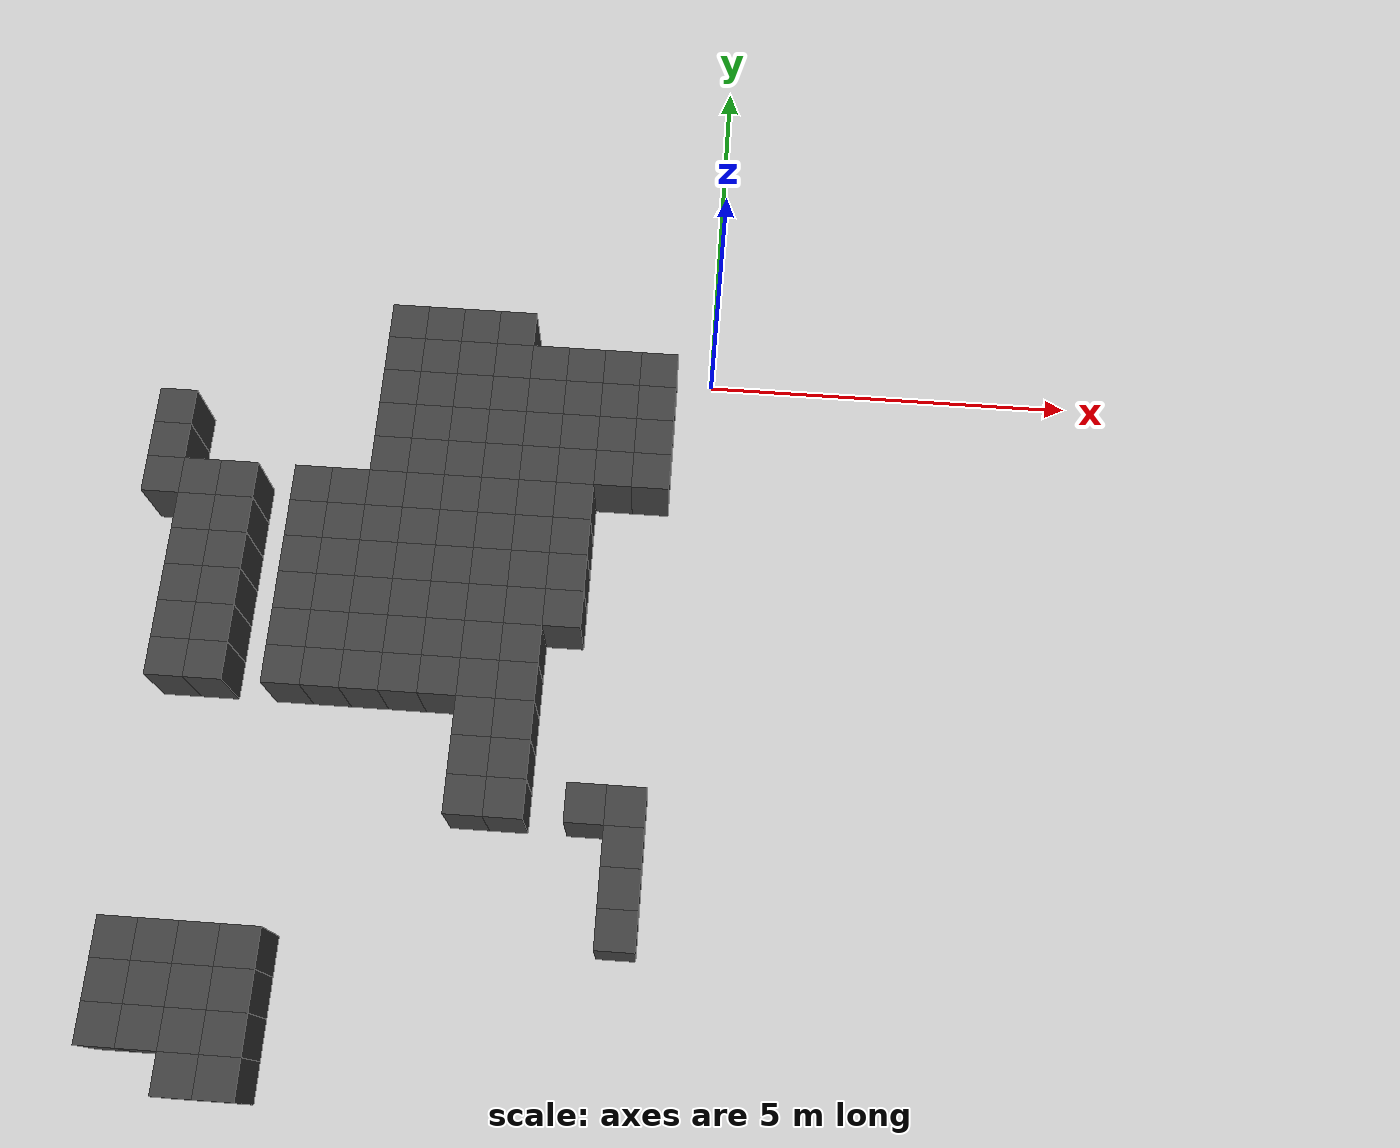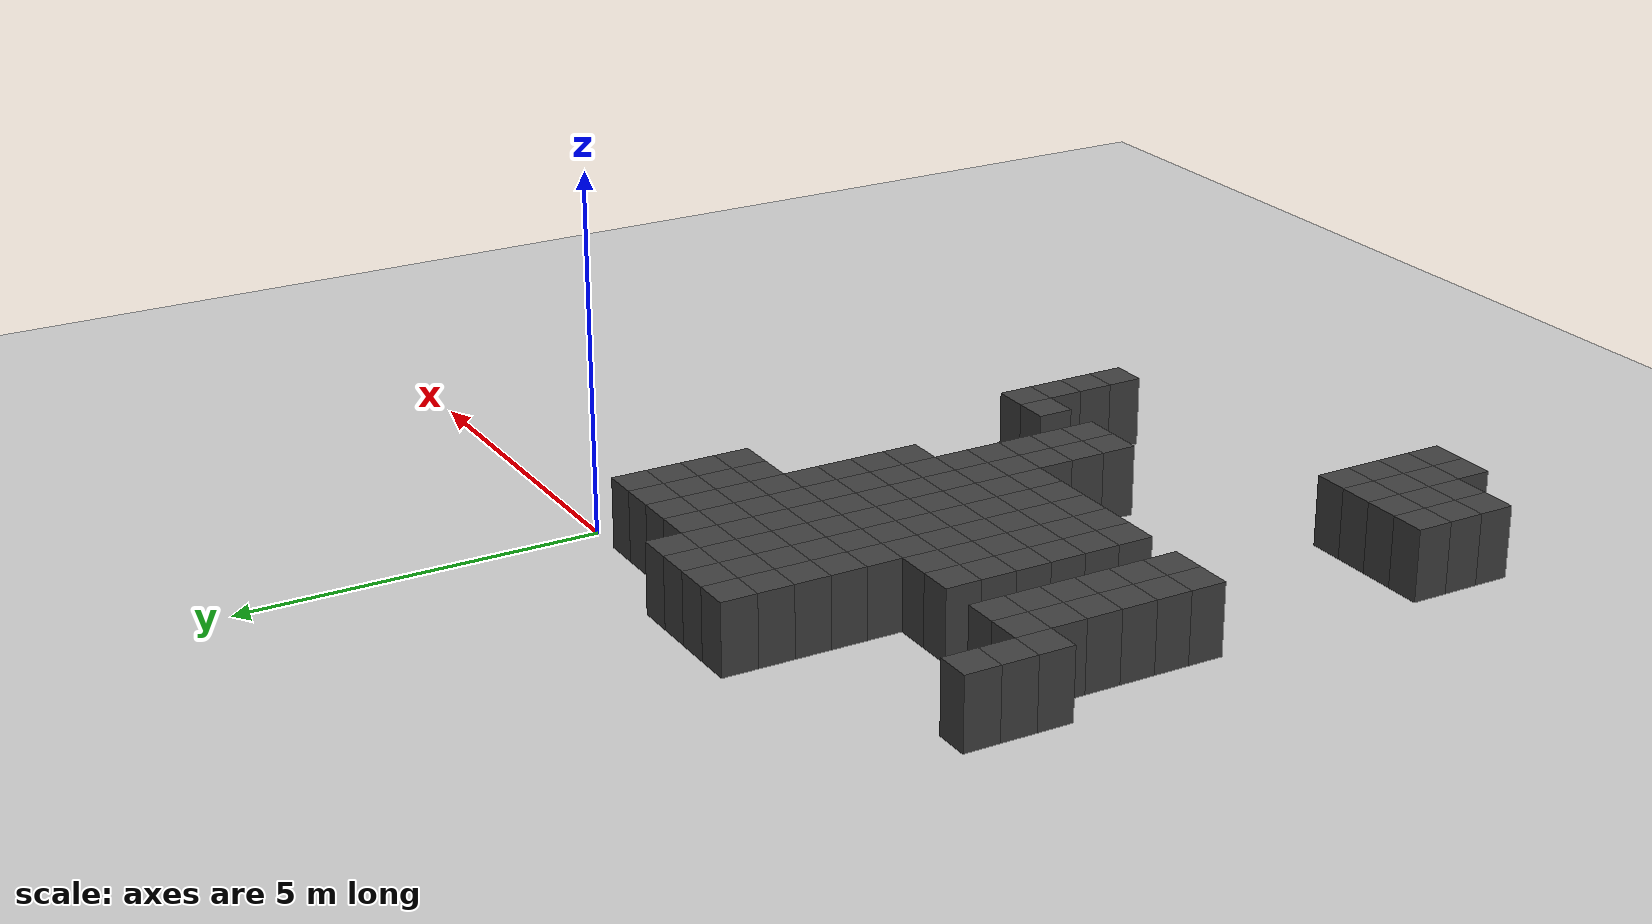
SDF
<sdf version="1.7">
 <world name="map_14074">
  <model name="ground_plane">
   <static>true</static>
   <link name="link">
    <collision name="collision">
     <geometry><plane><normal>0 0 1</normal><size>200 200</size></plane></geometry>
    </collision>
    <visual name="visual">
     <geometry><plane><normal>0 0 1</normal><size>200 200</size></plane></geometry>
     <material><ambient>0.8 0.8 0.8 1</ambient><diffuse>0.8 0.8 0.8 1</diffuse></material>
    </visual>
   </link>
  </model>
  <model name="maze_environment">
   <static>true</static>
   <link name="wall_959">
    <pose>-4.250 0.250 0.500 0 0 0</pose>
    <collision name="col"><geometry><box><size>0.5 0.5 1.0</size></box></geometry></collision>
    <visual name="vis">
     <geometry><box><size>0.5 0.5 1.0</size></box></geometry>
     <material><ambient>0.15 0.15 0.15 1</ambient><diffuse>0.25 0.25 0.25 1</diffuse></material>
    </visual>
   </link>
   <link name="wall_960">
    <pose>-3.750 0.250 0.500 0 0 0</pose>
    <collision name="col"><geometry><box><size>0.5 0.5 1.0</size></box></geometry></collision>
    <visual name="vis">
     <geometry><box><size>0.5 0.5 1.0</size></box></geometry>
     <material><ambient>0.15 0.15 0.15 1</ambient><diffuse>0.25 0.25 0.25 1</diffuse></material>
    </visual>
   </link>
   <link name="wall_961">
    <pose>-3.250 0.250 0.500 0 0 0</pose>
    <collision name="col"><geometry><box><size>0.5 0.5 1.0</size></box></geometry></collision>
    <visual name="vis">
     <geometry><box><size>0.5 0.5 1.0</size></box></geometry>
     <material><ambient>0.15 0.15 0.15 1</ambient><diffuse>0.25 0.25 0.25 1</diffuse></material>
    </visual>
   </link>
   <link name="wall_962">
    <pose>-2.750 0.250 0.500 0 0 0</pose>
    <collision name="col"><geometry><box><size>0.5 0.5 1.0</size></box></geometry></collision>
    <visual name="vis">
     <geometry><box><size>0.5 0.5 1.0</size></box></geometry>
     <material><ambient>0.15 0.15 0.15 1</ambient><diffuse>0.25 0.25 0.25 1</diffuse></material>
    </visual>
   </link>
   <link name="wall_997">
    <pose>-4.250 -0.250 0.500 0 0 0</pose>
    <collision name="col"><geometry><box><size>0.5 0.5 1.0</size></box></geometry></collision>
    <visual name="vis">
     <geometry><box><size>0.5 0.5 1.0</size></box></geometry>
     <material><ambient>0.15 0.15 0.15 1</ambient><diffuse>0.25 0.25 0.25 1</diffuse></material>
    </visual>
   </link>
   <link name="wall_998">
    <pose>-3.750 -0.250 0.500 0 0 0</pose>
    <collision name="col"><geometry><box><size>0.5 0.5 1.0</size></box></geometry></collision>
    <visual name="vis">
     <geometry><box><size>0.5 0.5 1.0</size></box></geometry>
     <material><ambient>0.15 0.15 0.15 1</ambient><diffuse>0.25 0.25 0.25 1</diffuse></material>
    </visual>
   </link>
   <link name="wall_999">
    <pose>-3.250 -0.250 0.500 0 0 0</pose>
    <collision name="col"><geometry><box><size>0.5 0.5 1.0</size></box></geometry></collision>
    <visual name="vis">
     <geometry><box><size>0.5 0.5 1.0</size></box></geometry>
     <material><ambient>0.15 0.15 0.15 1</ambient><diffuse>0.25 0.25 0.25 1</diffuse></material>
    </visual>
   </link>
   <link name="wall_1000">
    <pose>-2.750 -0.250 0.500 0 0 0</pose>
    <collision name="col"><geometry><box><size>0.5 0.5 1.0</size></box></geometry></collision>
    <visual name="vis">
     <geometry><box><size>0.5 0.5 1.0</size></box></geometry>
     <material><ambient>0.15 0.15 0.15 1</ambient><diffuse>0.25 0.25 0.25 1</diffuse></material>
    </visual>
   </link>
   <link name="wall_1001">
    <pose>-2.250 -0.250 0.500 0 0 0</pose>
    <collision name="col"><geometry><box><size>0.5 0.5 1.0</size></box></geometry></collision>
    <visual name="vis">
     <geometry><box><size>0.5 0.5 1.0</size></box></geometry>
     <material><ambient>0.15 0.15 0.15 1</ambient><diffuse>0.25 0.25 0.25 1</diffuse></material>
    </visual>
   </link>
   <link name="wall_1002">
    <pose>-1.750 -0.250 0.500 0 0 0</pose>
    <collision name="col"><geometry><box><size>0.5 0.5 1.0</size></box></geometry></collision>
    <visual name="vis">
     <geometry><box><size>0.5 0.5 1.0</size></box></geometry>
     <material><ambient>0.15 0.15 0.15 1</ambient><diffuse>0.25 0.25 0.25 1</diffuse></material>
    </visual>
   </link>
   <link name="wall_1003">
    <pose>-1.250 -0.250 0.500 0 0 0</pose>
    <collision name="col"><geometry><box><size>0.5 0.5 1.0</size></box></geometry></collision>
    <visual name="vis">
     <geometry><box><size>0.5 0.5 1.0</size></box></geometry>
     <material><ambient>0.15 0.15 0.15 1</ambient><diffuse>0.25 0.25 0.25 1</diffuse></material>
    </visual>
   </link>
   <link name="wall_1004">
    <pose>-0.750 -0.250 0.500 0 0 0</pose>
    <collision name="col"><geometry><box><size>0.5 0.5 1.0</size></box></geometry></collision>
    <visual name="vis">
     <geometry><box><size>0.5 0.5 1.0</size></box></geometry>
     <material><ambient>0.15 0.15 0.15 1</ambient><diffuse>0.25 0.25 0.25 1</diffuse></material>
    </visual>
   </link>
   <link name="wall_1035">
    <pose>-4.250 -0.750 0.500 0 0 0</pose>
    <collision name="col"><geometry><box><size>0.5 0.5 1.0</size></box></geometry></collision>
    <visual name="vis">
     <geometry><box><size>0.5 0.5 1.0</size></box></geometry>
     <material><ambient>0.15 0.15 0.15 1</ambient><diffuse>0.25 0.25 0.25 1</diffuse></material>
    </visual>
   </link>
   <link name="wall_1036">
    <pose>-3.750 -0.750 0.500 0 0 0</pose>
    <collision name="col"><geometry><box><size>0.5 0.5 1.0</size></box></geometry></collision>
    <visual name="vis">
     <geometry><box><size>0.5 0.5 1.0</size></box></geometry>
     <material><ambient>0.15 0.15 0.15 1</ambient><diffuse>0.25 0.25 0.25 1</diffuse></material>
    </visual>
   </link>
   <link name="wall_1037">
    <pose>-3.250 -0.750 0.500 0 0 0</pose>
    <collision name="col"><geometry><box><size>0.5 0.5 1.0</size></box></geometry></collision>
    <visual name="vis">
     <geometry><box><size>0.5 0.5 1.0</size></box></geometry>
     <material><ambient>0.15 0.15 0.15 1</ambient><diffuse>0.25 0.25 0.25 1</diffuse></material>
    </visual>
   </link>
   <link name="wall_1038">
    <pose>-2.750 -0.750 0.500 0 0 0</pose>
    <collision name="col"><geometry><box><size>0.5 0.5 1.0</size></box></geometry></collision>
    <visual name="vis">
     <geometry><box><size>0.5 0.5 1.0</size></box></geometry>
     <material><ambient>0.15 0.15 0.15 1</ambient><diffuse>0.25 0.25 0.25 1</diffuse></material>
    </visual>
   </link>
   <link name="wall_1039">
    <pose>-2.250 -0.750 0.500 0 0 0</pose>
    <collision name="col"><geometry><box><size>0.5 0.5 1.0</size></box></geometry></collision>
    <visual name="vis">
     <geometry><box><size>0.5 0.5 1.0</size></box></geometry>
     <material><ambient>0.15 0.15 0.15 1</ambient><diffuse>0.25 0.25 0.25 1</diffuse></material>
    </visual>
   </link>
   <link name="wall_1040">
    <pose>-1.750 -0.750 0.500 0 0 0</pose>
    <collision name="col"><geometry><box><size>0.5 0.5 1.0</size></box></geometry></collision>
    <visual name="vis">
     <geometry><box><size>0.5 0.5 1.0</size></box></geometry>
     <material><ambient>0.15 0.15 0.15 1</ambient><diffuse>0.25 0.25 0.25 1</diffuse></material>
    </visual>
   </link>
   <link name="wall_1041">
    <pose>-1.250 -0.750 0.500 0 0 0</pose>
    <collision name="col"><geometry><box><size>0.5 0.5 1.0</size></box></geometry></collision>
    <visual name="vis">
     <geometry><box><size>0.5 0.5 1.0</size></box></geometry>
     <material><ambient>0.15 0.15 0.15 1</ambient><diffuse>0.25 0.25 0.25 1</diffuse></material>
    </visual>
   </link>
   <link name="wall_1042">
    <pose>-0.750 -0.750 0.500 0 0 0</pose>
    <collision name="col"><geometry><box><size>0.5 0.5 1.0</size></box></geometry></collision>
    <visual name="vis">
     <geometry><box><size>0.5 0.5 1.0</size></box></geometry>
     <material><ambient>0.15 0.15 0.15 1</ambient><diffuse>0.25 0.25 0.25 1</diffuse></material>
    </visual>
   </link>
   <link name="wall_1073">
    <pose>-7.250 -1.250 0.500 0 0 0</pose>
    <collision name="col"><geometry><box><size>0.5 0.5 1.0</size></box></geometry></collision>
    <visual name="vis">
     <geometry><box><size>0.5 0.5 1.0</size></box></geometry>
     <material><ambient>0.15 0.15 0.15 1</ambient><diffuse>0.25 0.25 0.25 1</diffuse></material>
    </visual>
   </link>
   <link name="wall_1074">
    <pose>-4.250 -1.250 0.500 0 0 0</pose>
    <collision name="col"><geometry><box><size>0.5 0.5 1.0</size></box></geometry></collision>
    <visual name="vis">
     <geometry><box><size>0.5 0.5 1.0</size></box></geometry>
     <material><ambient>0.15 0.15 0.15 1</ambient><diffuse>0.25 0.25 0.25 1</diffuse></material>
    </visual>
   </link>
   <link name="wall_1075">
    <pose>-3.750 -1.250 0.500 0 0 0</pose>
    <collision name="col"><geometry><box><size>0.5 0.5 1.0</size></box></geometry></collision>
    <visual name="vis">
     <geometry><box><size>0.5 0.5 1.0</size></box></geometry>
     <material><ambient>0.15 0.15 0.15 1</ambient><diffuse>0.25 0.25 0.25 1</diffuse></material>
    </visual>
   </link>
   <link name="wall_1076">
    <pose>-3.250 -1.250 0.500 0 0 0</pose>
    <collision name="col"><geometry><box><size>0.5 0.5 1.0</size></box></geometry></collision>
    <visual name="vis">
     <geometry><box><size>0.5 0.5 1.0</size></box></geometry>
     <material><ambient>0.15 0.15 0.15 1</ambient><diffuse>0.25 0.25 0.25 1</diffuse></material>
    </visual>
   </link>
   <link name="wall_1077">
    <pose>-2.750 -1.250 0.500 0 0 0</pose>
    <collision name="col"><geometry><box><size>0.5 0.5 1.0</size></box></geometry></collision>
    <visual name="vis">
     <geometry><box><size>0.5 0.5 1.0</size></box></geometry>
     <material><ambient>0.15 0.15 0.15 1</ambient><diffuse>0.25 0.25 0.25 1</diffuse></material>
    </visual>
   </link>
   <link name="wall_1078">
    <pose>-2.250 -1.250 0.500 0 0 0</pose>
    <collision name="col"><geometry><box><size>0.5 0.5 1.0</size></box></geometry></collision>
    <visual name="vis">
     <geometry><box><size>0.5 0.5 1.0</size></box></geometry>
     <material><ambient>0.15 0.15 0.15 1</ambient><diffuse>0.25 0.25 0.25 1</diffuse></material>
    </visual>
   </link>
   <link name="wall_1079">
    <pose>-1.750 -1.250 0.500 0 0 0</pose>
    <collision name="col"><geometry><box><size>0.5 0.5 1.0</size></box></geometry></collision>
    <visual name="vis">
     <geometry><box><size>0.5 0.5 1.0</size></box></geometry>
     <material><ambient>0.15 0.15 0.15 1</ambient><diffuse>0.25 0.25 0.25 1</diffuse></material>
    </visual>
   </link>
   <link name="wall_1080">
    <pose>-1.250 -1.250 0.500 0 0 0</pose>
    <collision name="col"><geometry><box><size>0.5 0.5 1.0</size></box></geometry></collision>
    <visual name="vis">
     <geometry><box><size>0.5 0.5 1.0</size></box></geometry>
     <material><ambient>0.15 0.15 0.15 1</ambient><diffuse>0.25 0.25 0.25 1</diffuse></material>
    </visual>
   </link>
   <link name="wall_1081">
    <pose>-0.750 -1.250 0.500 0 0 0</pose>
    <collision name="col"><geometry><box><size>0.5 0.5 1.0</size></box></geometry></collision>
    <visual name="vis">
     <geometry><box><size>0.5 0.5 1.0</size></box></geometry>
     <material><ambient>0.15 0.15 0.15 1</ambient><diffuse>0.25 0.25 0.25 1</diffuse></material>
    </visual>
   </link>
   <link name="wall_1113">
    <pose>-7.250 -1.750 0.500 0 0 0</pose>
    <collision name="col"><geometry><box><size>0.5 0.5 1.0</size></box></geometry></collision>
    <visual name="vis">
     <geometry><box><size>0.5 0.5 1.0</size></box></geometry>
     <material><ambient>0.15 0.15 0.15 1</ambient><diffuse>0.25 0.25 0.25 1</diffuse></material>
    </visual>
   </link>
   <link name="wall_1114">
    <pose>-4.250 -1.750 0.500 0 0 0</pose>
    <collision name="col"><geometry><box><size>0.5 0.5 1.0</size></box></geometry></collision>
    <visual name="vis">
     <geometry><box><size>0.5 0.5 1.0</size></box></geometry>
     <material><ambient>0.15 0.15 0.15 1</ambient><diffuse>0.25 0.25 0.25 1</diffuse></material>
    </visual>
   </link>
   <link name="wall_1115">
    <pose>-3.750 -1.750 0.500 0 0 0</pose>
    <collision name="col"><geometry><box><size>0.5 0.5 1.0</size></box></geometry></collision>
    <visual name="vis">
     <geometry><box><size>0.5 0.5 1.0</size></box></geometry>
     <material><ambient>0.15 0.15 0.15 1</ambient><diffuse>0.25 0.25 0.25 1</diffuse></material>
    </visual>
   </link>
   <link name="wall_1116">
    <pose>-3.250 -1.750 0.500 0 0 0</pose>
    <collision name="col"><geometry><box><size>0.5 0.5 1.0</size></box></geometry></collision>
    <visual name="vis">
     <geometry><box><size>0.5 0.5 1.0</size></box></geometry>
     <material><ambient>0.15 0.15 0.15 1</ambient><diffuse>0.25 0.25 0.25 1</diffuse></material>
    </visual>
   </link>
   <link name="wall_1117">
    <pose>-2.750 -1.750 0.500 0 0 0</pose>
    <collision name="col"><geometry><box><size>0.5 0.5 1.0</size></box></geometry></collision>
    <visual name="vis">
     <geometry><box><size>0.5 0.5 1.0</size></box></geometry>
     <material><ambient>0.15 0.15 0.15 1</ambient><diffuse>0.25 0.25 0.25 1</diffuse></material>
    </visual>
   </link>
   <link name="wall_1118">
    <pose>-2.250 -1.750 0.500 0 0 0</pose>
    <collision name="col"><geometry><box><size>0.5 0.5 1.0</size></box></geometry></collision>
    <visual name="vis">
     <geometry><box><size>0.5 0.5 1.0</size></box></geometry>
     <material><ambient>0.15 0.15 0.15 1</ambient><diffuse>0.25 0.25 0.25 1</diffuse></material>
    </visual>
   </link>
   <link name="wall_1119">
    <pose>-1.750 -1.750 0.500 0 0 0</pose>
    <collision name="col"><geometry><box><size>0.5 0.5 1.0</size></box></geometry></collision>
    <visual name="vis">
     <geometry><box><size>0.5 0.5 1.0</size></box></geometry>
     <material><ambient>0.15 0.15 0.15 1</ambient><diffuse>0.25 0.25 0.25 1</diffuse></material>
    </visual>
   </link>
   <link name="wall_1120">
    <pose>-1.250 -1.750 0.500 0 0 0</pose>
    <collision name="col"><geometry><box><size>0.5 0.5 1.0</size></box></geometry></collision>
    <visual name="vis">
     <geometry><box><size>0.5 0.5 1.0</size></box></geometry>
     <material><ambient>0.15 0.15 0.15 1</ambient><diffuse>0.25 0.25 0.25 1</diffuse></material>
    </visual>
   </link>
   <link name="wall_1121">
    <pose>-0.750 -1.750 0.500 0 0 0</pose>
    <collision name="col"><geometry><box><size>0.5 0.5 1.0</size></box></geometry></collision>
    <visual name="vis">
     <geometry><box><size>0.5 0.5 1.0</size></box></geometry>
     <material><ambient>0.15 0.15 0.15 1</ambient><diffuse>0.25 0.25 0.25 1</diffuse></material>
    </visual>
   </link>
   <link name="wall_1153">
    <pose>-7.250 -2.250 0.500 0 0 0</pose>
    <collision name="col"><geometry><box><size>0.5 0.5 1.0</size></box></geometry></collision>
    <visual name="vis">
     <geometry><box><size>0.5 0.5 1.0</size></box></geometry>
     <material><ambient>0.15 0.15 0.15 1</ambient><diffuse>0.25 0.25 0.25 1</diffuse></material>
    </visual>
   </link>
   <link name="wall_1154">
    <pose>-6.750 -2.250 0.500 0 0 0</pose>
    <collision name="col"><geometry><box><size>0.5 0.5 1.0</size></box></geometry></collision>
    <visual name="vis">
     <geometry><box><size>0.5 0.5 1.0</size></box></geometry>
     <material><ambient>0.15 0.15 0.15 1</ambient><diffuse>0.25 0.25 0.25 1</diffuse></material>
    </visual>
   </link>
   <link name="wall_1155">
    <pose>-6.250 -2.250 0.500 0 0 0</pose>
    <collision name="col"><geometry><box><size>0.5 0.5 1.0</size></box></geometry></collision>
    <visual name="vis">
     <geometry><box><size>0.5 0.5 1.0</size></box></geometry>
     <material><ambient>0.15 0.15 0.15 1</ambient><diffuse>0.25 0.25 0.25 1</diffuse></material>
    </visual>
   </link>
   <link name="wall_1156">
    <pose>-5.250 -2.250 0.500 0 0 0</pose>
    <collision name="col"><geometry><box><size>0.5 0.5 1.0</size></box></geometry></collision>
    <visual name="vis">
     <geometry><box><size>0.5 0.5 1.0</size></box></geometry>
     <material><ambient>0.15 0.15 0.15 1</ambient><diffuse>0.25 0.25 0.25 1</diffuse></material>
    </visual>
   </link>
   <link name="wall_1157">
    <pose>-4.750 -2.250 0.500 0 0 0</pose>
    <collision name="col"><geometry><box><size>0.5 0.5 1.0</size></box></geometry></collision>
    <visual name="vis">
     <geometry><box><size>0.5 0.5 1.0</size></box></geometry>
     <material><ambient>0.15 0.15 0.15 1</ambient><diffuse>0.25 0.25 0.25 1</diffuse></material>
    </visual>
   </link>
   <link name="wall_1158">
    <pose>-4.250 -2.250 0.500 0 0 0</pose>
    <collision name="col"><geometry><box><size>0.5 0.5 1.0</size></box></geometry></collision>
    <visual name="vis">
     <geometry><box><size>0.5 0.5 1.0</size></box></geometry>
     <material><ambient>0.15 0.15 0.15 1</ambient><diffuse>0.25 0.25 0.25 1</diffuse></material>
    </visual>
   </link>
   <link name="wall_1159">
    <pose>-3.750 -2.250 0.500 0 0 0</pose>
    <collision name="col"><geometry><box><size>0.5 0.5 1.0</size></box></geometry></collision>
    <visual name="vis">
     <geometry><box><size>0.5 0.5 1.0</size></box></geometry>
     <material><ambient>0.15 0.15 0.15 1</ambient><diffuse>0.25 0.25 0.25 1</diffuse></material>
    </visual>
   </link>
   <link name="wall_1160">
    <pose>-3.250 -2.250 0.500 0 0 0</pose>
    <collision name="col"><geometry><box><size>0.5 0.5 1.0</size></box></geometry></collision>
    <visual name="vis">
     <geometry><box><size>0.5 0.5 1.0</size></box></geometry>
     <material><ambient>0.15 0.15 0.15 1</ambient><diffuse>0.25 0.25 0.25 1</diffuse></material>
    </visual>
   </link>
   <link name="wall_1161">
    <pose>-2.750 -2.250 0.500 0 0 0</pose>
    <collision name="col"><geometry><box><size>0.5 0.5 1.0</size></box></geometry></collision>
    <visual name="vis">
     <geometry><box><size>0.5 0.5 1.0</size></box></geometry>
     <material><ambient>0.15 0.15 0.15 1</ambient><diffuse>0.25 0.25 0.25 1</diffuse></material>
    </visual>
   </link>
   <link name="wall_1162">
    <pose>-2.250 -2.250 0.500 0 0 0</pose>
    <collision name="col"><geometry><box><size>0.5 0.5 1.0</size></box></geometry></collision>
    <visual name="vis">
     <geometry><box><size>0.5 0.5 1.0</size></box></geometry>
     <material><ambient>0.15 0.15 0.15 1</ambient><diffuse>0.25 0.25 0.25 1</diffuse></material>
    </visual>
   </link>
   <link name="wall_1163">
    <pose>-1.750 -2.250 0.500 0 0 0</pose>
    <collision name="col"><geometry><box><size>0.5 0.5 1.0</size></box></geometry></collision>
    <visual name="vis">
     <geometry><box><size>0.5 0.5 1.0</size></box></geometry>
     <material><ambient>0.15 0.15 0.15 1</ambient><diffuse>0.25 0.25 0.25 1</diffuse></material>
    </visual>
   </link>
   <link name="wall_1190">
    <pose>-6.750 -2.750 0.500 0 0 0</pose>
    <collision name="col"><geometry><box><size>0.5 0.5 1.0</size></box></geometry></collision>
    <visual name="vis">
     <geometry><box><size>0.5 0.5 1.0</size></box></geometry>
     <material><ambient>0.15 0.15 0.15 1</ambient><diffuse>0.25 0.25 0.25 1</diffuse></material>
    </visual>
   </link>
   <link name="wall_1191">
    <pose>-6.250 -2.750 0.500 0 0 0</pose>
    <collision name="col"><geometry><box><size>0.5 0.5 1.0</size></box></geometry></collision>
    <visual name="vis">
     <geometry><box><size>0.5 0.5 1.0</size></box></geometry>
     <material><ambient>0.15 0.15 0.15 1</ambient><diffuse>0.25 0.25 0.25 1</diffuse></material>
    </visual>
   </link>
   <link name="wall_1192">
    <pose>-5.250 -2.750 0.500 0 0 0</pose>
    <collision name="col"><geometry><box><size>0.5 0.5 1.0</size></box></geometry></collision>
    <visual name="vis">
     <geometry><box><size>0.5 0.5 1.0</size></box></geometry>
     <material><ambient>0.15 0.15 0.15 1</ambient><diffuse>0.25 0.25 0.25 1</diffuse></material>
    </visual>
   </link>
   <link name="wall_1193">
    <pose>-4.750 -2.750 0.500 0 0 0</pose>
    <collision name="col"><geometry><box><size>0.5 0.5 1.0</size></box></geometry></collision>
    <visual name="vis">
     <geometry><box><size>0.5 0.5 1.0</size></box></geometry>
     <material><ambient>0.15 0.15 0.15 1</ambient><diffuse>0.25 0.25 0.25 1</diffuse></material>
    </visual>
   </link>
   <link name="wall_1194">
    <pose>-4.250 -2.750 0.500 0 0 0</pose>
    <collision name="col"><geometry><box><size>0.5 0.5 1.0</size></box></geometry></collision>
    <visual name="vis">
     <geometry><box><size>0.5 0.5 1.0</size></box></geometry>
     <material><ambient>0.15 0.15 0.15 1</ambient><diffuse>0.25 0.25 0.25 1</diffuse></material>
    </visual>
   </link>
   <link name="wall_1195">
    <pose>-3.750 -2.750 0.500 0 0 0</pose>
    <collision name="col"><geometry><box><size>0.5 0.5 1.0</size></box></geometry></collision>
    <visual name="vis">
     <geometry><box><size>0.5 0.5 1.0</size></box></geometry>
     <material><ambient>0.15 0.15 0.15 1</ambient><diffuse>0.25 0.25 0.25 1</diffuse></material>
    </visual>
   </link>
   <link name="wall_1196">
    <pose>-3.250 -2.750 0.500 0 0 0</pose>
    <collision name="col"><geometry><box><size>0.5 0.5 1.0</size></box></geometry></collision>
    <visual name="vis">
     <geometry><box><size>0.5 0.5 1.0</size></box></geometry>
     <material><ambient>0.15 0.15 0.15 1</ambient><diffuse>0.25 0.25 0.25 1</diffuse></material>
    </visual>
   </link>
   <link name="wall_1197">
    <pose>-2.750 -2.750 0.500 0 0 0</pose>
    <collision name="col"><geometry><box><size>0.5 0.5 1.0</size></box></geometry></collision>
    <visual name="vis">
     <geometry><box><size>0.5 0.5 1.0</size></box></geometry>
     <material><ambient>0.15 0.15 0.15 1</ambient><diffuse>0.25 0.25 0.25 1</diffuse></material>
    </visual>
   </link>
   <link name="wall_1198">
    <pose>-2.250 -2.750 0.500 0 0 0</pose>
    <collision name="col"><geometry><box><size>0.5 0.5 1.0</size></box></geometry></collision>
    <visual name="vis">
     <geometry><box><size>0.5 0.5 1.0</size></box></geometry>
     <material><ambient>0.15 0.15 0.15 1</ambient><diffuse>0.25 0.25 0.25 1</diffuse></material>
    </visual>
   </link>
   <link name="wall_1199">
    <pose>-1.750 -2.750 0.500 0 0 0</pose>
    <collision name="col"><geometry><box><size>0.5 0.5 1.0</size></box></geometry></collision>
    <visual name="vis">
     <geometry><box><size>0.5 0.5 1.0</size></box></geometry>
     <material><ambient>0.15 0.15 0.15 1</ambient><diffuse>0.25 0.25 0.25 1</diffuse></material>
    </visual>
   </link>
   <link name="wall_1220">
    <pose>-6.750 -3.250 0.500 0 0 0</pose>
    <collision name="col"><geometry><box><size>0.5 0.5 1.0</size></box></geometry></collision>
    <visual name="vis">
     <geometry><box><size>0.5 0.5 1.0</size></box></geometry>
     <material><ambient>0.15 0.15 0.15 1</ambient><diffuse>0.25 0.25 0.25 1</diffuse></material>
    </visual>
   </link>
   <link name="wall_1221">
    <pose>-6.250 -3.250 0.500 0 0 0</pose>
    <collision name="col"><geometry><box><size>0.5 0.5 1.0</size></box></geometry></collision>
    <visual name="vis">
     <geometry><box><size>0.5 0.5 1.0</size></box></geometry>
     <material><ambient>0.15 0.15 0.15 1</ambient><diffuse>0.25 0.25 0.25 1</diffuse></material>
    </visual>
   </link>
   <link name="wall_1222">
    <pose>-5.250 -3.250 0.500 0 0 0</pose>
    <collision name="col"><geometry><box><size>0.5 0.5 1.0</size></box></geometry></collision>
    <visual name="vis">
     <geometry><box><size>0.5 0.5 1.0</size></box></geometry>
     <material><ambient>0.15 0.15 0.15 1</ambient><diffuse>0.25 0.25 0.25 1</diffuse></material>
    </visual>
   </link>
   <link name="wall_1223">
    <pose>-4.750 -3.250 0.500 0 0 0</pose>
    <collision name="col"><geometry><box><size>0.5 0.5 1.0</size></box></geometry></collision>
    <visual name="vis">
     <geometry><box><size>0.5 0.5 1.0</size></box></geometry>
     <material><ambient>0.15 0.15 0.15 1</ambient><diffuse>0.25 0.25 0.25 1</diffuse></material>
    </visual>
   </link>
   <link name="wall_1224">
    <pose>-4.250 -3.250 0.500 0 0 0</pose>
    <collision name="col"><geometry><box><size>0.5 0.5 1.0</size></box></geometry></collision>
    <visual name="vis">
     <geometry><box><size>0.5 0.5 1.0</size></box></geometry>
     <material><ambient>0.15 0.15 0.15 1</ambient><diffuse>0.25 0.25 0.25 1</diffuse></material>
    </visual>
   </link>
   <link name="wall_1225">
    <pose>-3.750 -3.250 0.500 0 0 0</pose>
    <collision name="col"><geometry><box><size>0.5 0.5 1.0</size></box></geometry></collision>
    <visual name="vis">
     <geometry><box><size>0.5 0.5 1.0</size></box></geometry>
     <material><ambient>0.15 0.15 0.15 1</ambient><diffuse>0.25 0.25 0.25 1</diffuse></material>
    </visual>
   </link>
   <link name="wall_1226">
    <pose>-3.250 -3.250 0.500 0 0 0</pose>
    <collision name="col"><geometry><box><size>0.5 0.5 1.0</size></box></geometry></collision>
    <visual name="vis">
     <geometry><box><size>0.5 0.5 1.0</size></box></geometry>
     <material><ambient>0.15 0.15 0.15 1</ambient><diffuse>0.25 0.25 0.25 1</diffuse></material>
    </visual>
   </link>
   <link name="wall_1227">
    <pose>-2.750 -3.250 0.500 0 0 0</pose>
    <collision name="col"><geometry><box><size>0.5 0.5 1.0</size></box></geometry></collision>
    <visual name="vis">
     <geometry><box><size>0.5 0.5 1.0</size></box></geometry>
     <material><ambient>0.15 0.15 0.15 1</ambient><diffuse>0.25 0.25 0.25 1</diffuse></material>
    </visual>
   </link>
   <link name="wall_1228">
    <pose>-2.250 -3.250 0.500 0 0 0</pose>
    <collision name="col"><geometry><box><size>0.5 0.5 1.0</size></box></geometry></collision>
    <visual name="vis">
     <geometry><box><size>0.5 0.5 1.0</size></box></geometry>
     <material><ambient>0.15 0.15 0.15 1</ambient><diffuse>0.25 0.25 0.25 1</diffuse></material>
    </visual>
   </link>
   <link name="wall_1229">
    <pose>-1.750 -3.250 0.500 0 0 0</pose>
    <collision name="col"><geometry><box><size>0.5 0.5 1.0</size></box></geometry></collision>
    <visual name="vis">
     <geometry><box><size>0.5 0.5 1.0</size></box></geometry>
     <material><ambient>0.15 0.15 0.15 1</ambient><diffuse>0.25 0.25 0.25 1</diffuse></material>
    </visual>
   </link>
   <link name="wall_1250">
    <pose>-6.750 -3.750 0.500 0 0 0</pose>
    <collision name="col"><geometry><box><size>0.5 0.5 1.0</size></box></geometry></collision>
    <visual name="vis">
     <geometry><box><size>0.5 0.5 1.0</size></box></geometry>
     <material><ambient>0.15 0.15 0.15 1</ambient><diffuse>0.25 0.25 0.25 1</diffuse></material>
    </visual>
   </link>
   <link name="wall_1251">
    <pose>-6.250 -3.750 0.500 0 0 0</pose>
    <collision name="col"><geometry><box><size>0.5 0.5 1.0</size></box></geometry></collision>
    <visual name="vis">
     <geometry><box><size>0.5 0.5 1.0</size></box></geometry>
     <material><ambient>0.15 0.15 0.15 1</ambient><diffuse>0.25 0.25 0.25 1</diffuse></material>
    </visual>
   </link>
   <link name="wall_1252">
    <pose>-5.250 -3.750 0.500 0 0 0</pose>
    <collision name="col"><geometry><box><size>0.5 0.5 1.0</size></box></geometry></collision>
    <visual name="vis">
     <geometry><box><size>0.5 0.5 1.0</size></box></geometry>
     <material><ambient>0.15 0.15 0.15 1</ambient><diffuse>0.25 0.25 0.25 1</diffuse></material>
    </visual>
   </link>
   <link name="wall_1253">
    <pose>-4.750 -3.750 0.500 0 0 0</pose>
    <collision name="col"><geometry><box><size>0.5 0.5 1.0</size></box></geometry></collision>
    <visual name="vis">
     <geometry><box><size>0.5 0.5 1.0</size></box></geometry>
     <material><ambient>0.15 0.15 0.15 1</ambient><diffuse>0.25 0.25 0.25 1</diffuse></material>
    </visual>
   </link>
   <link name="wall_1254">
    <pose>-4.250 -3.750 0.500 0 0 0</pose>
    <collision name="col"><geometry><box><size>0.5 0.5 1.0</size></box></geometry></collision>
    <visual name="vis">
     <geometry><box><size>0.5 0.5 1.0</size></box></geometry>
     <material><ambient>0.15 0.15 0.15 1</ambient><diffuse>0.25 0.25 0.25 1</diffuse></material>
    </visual>
   </link>
   <link name="wall_1255">
    <pose>-3.750 -3.750 0.500 0 0 0</pose>
    <collision name="col"><geometry><box><size>0.5 0.5 1.0</size></box></geometry></collision>
    <visual name="vis">
     <geometry><box><size>0.5 0.5 1.0</size></box></geometry>
     <material><ambient>0.15 0.15 0.15 1</ambient><diffuse>0.25 0.25 0.25 1</diffuse></material>
    </visual>
   </link>
   <link name="wall_1256">
    <pose>-3.250 -3.750 0.500 0 0 0</pose>
    <collision name="col"><geometry><box><size>0.5 0.5 1.0</size></box></geometry></collision>
    <visual name="vis">
     <geometry><box><size>0.5 0.5 1.0</size></box></geometry>
     <material><ambient>0.15 0.15 0.15 1</ambient><diffuse>0.25 0.25 0.25 1</diffuse></material>
    </visual>
   </link>
   <link name="wall_1257">
    <pose>-2.750 -3.750 0.500 0 0 0</pose>
    <collision name="col"><geometry><box><size>0.5 0.5 1.0</size></box></geometry></collision>
    <visual name="vis">
     <geometry><box><size>0.5 0.5 1.0</size></box></geometry>
     <material><ambient>0.15 0.15 0.15 1</ambient><diffuse>0.25 0.25 0.25 1</diffuse></material>
    </visual>
   </link>
   <link name="wall_1258">
    <pose>-2.250 -3.750 0.500 0 0 0</pose>
    <collision name="col"><geometry><box><size>0.5 0.5 1.0</size></box></geometry></collision>
    <visual name="vis">
     <geometry><box><size>0.5 0.5 1.0</size></box></geometry>
     <material><ambient>0.15 0.15 0.15 1</ambient><diffuse>0.25 0.25 0.25 1</diffuse></material>
    </visual>
   </link>
   <link name="wall_1259">
    <pose>-1.750 -3.750 0.500 0 0 0</pose>
    <collision name="col"><geometry><box><size>0.5 0.5 1.0</size></box></geometry></collision>
    <visual name="vis">
     <geometry><box><size>0.5 0.5 1.0</size></box></geometry>
     <material><ambient>0.15 0.15 0.15 1</ambient><diffuse>0.25 0.25 0.25 1</diffuse></material>
    </visual>
   </link>
   <link name="wall_1280">
    <pose>-6.750 -4.250 0.500 0 0 0</pose>
    <collision name="col"><geometry><box><size>0.5 0.5 1.0</size></box></geometry></collision>
    <visual name="vis">
     <geometry><box><size>0.5 0.5 1.0</size></box></geometry>
     <material><ambient>0.15 0.15 0.15 1</ambient><diffuse>0.25 0.25 0.25 1</diffuse></material>
    </visual>
   </link>
   <link name="wall_1281">
    <pose>-6.250 -4.250 0.500 0 0 0</pose>
    <collision name="col"><geometry><box><size>0.5 0.5 1.0</size></box></geometry></collision>
    <visual name="vis">
     <geometry><box><size>0.5 0.5 1.0</size></box></geometry>
     <material><ambient>0.15 0.15 0.15 1</ambient><diffuse>0.25 0.25 0.25 1</diffuse></material>
    </visual>
   </link>
   <link name="wall_1282">
    <pose>-5.250 -4.250 0.500 0 0 0</pose>
    <collision name="col"><geometry><box><size>0.5 0.5 1.0</size></box></geometry></collision>
    <visual name="vis">
     <geometry><box><size>0.5 0.5 1.0</size></box></geometry>
     <material><ambient>0.15 0.15 0.15 1</ambient><diffuse>0.25 0.25 0.25 1</diffuse></material>
    </visual>
   </link>
   <link name="wall_1283">
    <pose>-4.750 -4.250 0.500 0 0 0</pose>
    <collision name="col"><geometry><box><size>0.5 0.5 1.0</size></box></geometry></collision>
    <visual name="vis">
     <geometry><box><size>0.5 0.5 1.0</size></box></geometry>
     <material><ambient>0.15 0.15 0.15 1</ambient><diffuse>0.25 0.25 0.25 1</diffuse></material>
    </visual>
   </link>
   <link name="wall_1284">
    <pose>-4.250 -4.250 0.500 0 0 0</pose>
    <collision name="col"><geometry><box><size>0.5 0.5 1.0</size></box></geometry></collision>
    <visual name="vis">
     <geometry><box><size>0.5 0.5 1.0</size></box></geometry>
     <material><ambient>0.15 0.15 0.15 1</ambient><diffuse>0.25 0.25 0.25 1</diffuse></material>
    </visual>
   </link>
   <link name="wall_1285">
    <pose>-3.750 -4.250 0.500 0 0 0</pose>
    <collision name="col"><geometry><box><size>0.5 0.5 1.0</size></box></geometry></collision>
    <visual name="vis">
     <geometry><box><size>0.5 0.5 1.0</size></box></geometry>
     <material><ambient>0.15 0.15 0.15 1</ambient><diffuse>0.25 0.25 0.25 1</diffuse></material>
    </visual>
   </link>
   <link name="wall_1286">
    <pose>-3.250 -4.250 0.500 0 0 0</pose>
    <collision name="col"><geometry><box><size>0.5 0.5 1.0</size></box></geometry></collision>
    <visual name="vis">
     <geometry><box><size>0.5 0.5 1.0</size></box></geometry>
     <material><ambient>0.15 0.15 0.15 1</ambient><diffuse>0.25 0.25 0.25 1</diffuse></material>
    </visual>
   </link>
   <link name="wall_1287">
    <pose>-2.750 -4.250 0.500 0 0 0</pose>
    <collision name="col"><geometry><box><size>0.5 0.5 1.0</size></box></geometry></collision>
    <visual name="vis">
     <geometry><box><size>0.5 0.5 1.0</size></box></geometry>
     <material><ambient>0.15 0.15 0.15 1</ambient><diffuse>0.25 0.25 0.25 1</diffuse></material>
    </visual>
   </link>
   <link name="wall_1288">
    <pose>-2.250 -4.250 0.500 0 0 0</pose>
    <collision name="col"><geometry><box><size>0.5 0.5 1.0</size></box></geometry></collision>
    <visual name="vis">
     <geometry><box><size>0.5 0.5 1.0</size></box></geometry>
     <material><ambient>0.15 0.15 0.15 1</ambient><diffuse>0.25 0.25 0.25 1</diffuse></material>
    </visual>
   </link>
   <link name="wall_1308">
    <pose>-6.750 -4.750 0.500 0 0 0</pose>
    <collision name="col"><geometry><box><size>0.5 0.5 1.0</size></box></geometry></collision>
    <visual name="vis">
     <geometry><box><size>0.5 0.5 1.0</size></box></geometry>
     <material><ambient>0.15 0.15 0.15 1</ambient><diffuse>0.25 0.25 0.25 1</diffuse></material>
    </visual>
   </link>
   <link name="wall_1309">
    <pose>-6.250 -4.750 0.500 0 0 0</pose>
    <collision name="col"><geometry><box><size>0.5 0.5 1.0</size></box></geometry></collision>
    <visual name="vis">
     <geometry><box><size>0.5 0.5 1.0</size></box></geometry>
     <material><ambient>0.15 0.15 0.15 1</ambient><diffuse>0.25 0.25 0.25 1</diffuse></material>
    </visual>
   </link>
   <link name="wall_1310">
    <pose>-5.250 -4.750 0.500 0 0 0</pose>
    <collision name="col"><geometry><box><size>0.5 0.5 1.0</size></box></geometry></collision>
    <visual name="vis">
     <geometry><box><size>0.5 0.5 1.0</size></box></geometry>
     <material><ambient>0.15 0.15 0.15 1</ambient><diffuse>0.25 0.25 0.25 1</diffuse></material>
    </visual>
   </link>
   <link name="wall_1311">
    <pose>-4.750 -4.750 0.500 0 0 0</pose>
    <collision name="col"><geometry><box><size>0.5 0.5 1.0</size></box></geometry></collision>
    <visual name="vis">
     <geometry><box><size>0.5 0.5 1.0</size></box></geometry>
     <material><ambient>0.15 0.15 0.15 1</ambient><diffuse>0.25 0.25 0.25 1</diffuse></material>
    </visual>
   </link>
   <link name="wall_1312">
    <pose>-4.250 -4.750 0.500 0 0 0</pose>
    <collision name="col"><geometry><box><size>0.5 0.5 1.0</size></box></geometry></collision>
    <visual name="vis">
     <geometry><box><size>0.5 0.5 1.0</size></box></geometry>
     <material><ambient>0.15 0.15 0.15 1</ambient><diffuse>0.25 0.25 0.25 1</diffuse></material>
    </visual>
   </link>
   <link name="wall_1313">
    <pose>-3.750 -4.750 0.500 0 0 0</pose>
    <collision name="col"><geometry><box><size>0.5 0.5 1.0</size></box></geometry></collision>
    <visual name="vis">
     <geometry><box><size>0.5 0.5 1.0</size></box></geometry>
     <material><ambient>0.15 0.15 0.15 1</ambient><diffuse>0.25 0.25 0.25 1</diffuse></material>
    </visual>
   </link>
   <link name="wall_1314">
    <pose>-3.250 -4.750 0.500 0 0 0</pose>
    <collision name="col"><geometry><box><size>0.5 0.5 1.0</size></box></geometry></collision>
    <visual name="vis">
     <geometry><box><size>0.5 0.5 1.0</size></box></geometry>
     <material><ambient>0.15 0.15 0.15 1</ambient><diffuse>0.25 0.25 0.25 1</diffuse></material>
    </visual>
   </link>
   <link name="wall_1315">
    <pose>-2.750 -4.750 0.500 0 0 0</pose>
    <collision name="col"><geometry><box><size>0.5 0.5 1.0</size></box></geometry></collision>
    <visual name="vis">
     <geometry><box><size>0.5 0.5 1.0</size></box></geometry>
     <material><ambient>0.15 0.15 0.15 1</ambient><diffuse>0.25 0.25 0.25 1</diffuse></material>
    </visual>
   </link>
   <link name="wall_1316">
    <pose>-2.250 -4.750 0.500 0 0 0</pose>
    <collision name="col"><geometry><box><size>0.5 0.5 1.0</size></box></geometry></collision>
    <visual name="vis">
     <geometry><box><size>0.5 0.5 1.0</size></box></geometry>
     <material><ambient>0.15 0.15 0.15 1</ambient><diffuse>0.25 0.25 0.25 1</diffuse></material>
    </visual>
   </link>
   <link name="wall_1336">
    <pose>-2.750 -5.250 0.500 0 0 0</pose>
    <collision name="col"><geometry><box><size>0.5 0.5 1.0</size></box></geometry></collision>
    <visual name="vis">
     <geometry><box><size>0.5 0.5 1.0</size></box></geometry>
     <material><ambient>0.15 0.15 0.15 1</ambient><diffuse>0.25 0.25 0.25 1</diffuse></material>
    </visual>
   </link>
   <link name="wall_1337">
    <pose>-2.250 -5.250 0.500 0 0 0</pose>
    <collision name="col"><geometry><box><size>0.5 0.5 1.0</size></box></geometry></collision>
    <visual name="vis">
     <geometry><box><size>0.5 0.5 1.0</size></box></geometry>
     <material><ambient>0.15 0.15 0.15 1</ambient><diffuse>0.25 0.25 0.25 1</diffuse></material>
    </visual>
   </link>
   <link name="wall_1357">
    <pose>-2.750 -5.750 0.500 0 0 0</pose>
    <collision name="col"><geometry><box><size>0.5 0.5 1.0</size></box></geometry></collision>
    <visual name="vis">
     <geometry><box><size>0.5 0.5 1.0</size></box></geometry>
     <material><ambient>0.15 0.15 0.15 1</ambient><diffuse>0.25 0.25 0.25 1</diffuse></material>
    </visual>
   </link>
   <link name="wall_1358">
    <pose>-2.250 -5.750 0.500 0 0 0</pose>
    <collision name="col"><geometry><box><size>0.5 0.5 1.0</size></box></geometry></collision>
    <visual name="vis">
     <geometry><box><size>0.5 0.5 1.0</size></box></geometry>
     <material><ambient>0.15 0.15 0.15 1</ambient><diffuse>0.25 0.25 0.25 1</diffuse></material>
    </visual>
   </link>
   <link name="wall_1379">
    <pose>-2.750 -6.250 0.500 0 0 0</pose>
    <collision name="col"><geometry><box><size>0.5 0.5 1.0</size></box></geometry></collision>
    <visual name="vis">
     <geometry><box><size>0.5 0.5 1.0</size></box></geometry>
     <material><ambient>0.15 0.15 0.15 1</ambient><diffuse>0.25 0.25 0.25 1</diffuse></material>
    </visual>
   </link>
   <link name="wall_1380">
    <pose>-2.250 -6.250 0.500 0 0 0</pose>
    <collision name="col"><geometry><box><size>0.5 0.5 1.0</size></box></geometry></collision>
    <visual name="vis">
     <geometry><box><size>0.5 0.5 1.0</size></box></geometry>
     <material><ambient>0.15 0.15 0.15 1</ambient><diffuse>0.25 0.25 0.25 1</diffuse></material>
    </visual>
   </link>
   <link name="wall_1381">
    <pose>-1.250 -6.250 0.500 0 0 0</pose>
    <collision name="col"><geometry><box><size>0.5 0.5 1.0</size></box></geometry></collision>
    <visual name="vis">
     <geometry><box><size>0.5 0.5 1.0</size></box></geometry>
     <material><ambient>0.15 0.15 0.15 1</ambient><diffuse>0.25 0.25 0.25 1</diffuse></material>
    </visual>
   </link>
   <link name="wall_1382">
    <pose>-0.750 -6.250 0.500 0 0 0</pose>
    <collision name="col"><geometry><box><size>0.5 0.5 1.0</size></box></geometry></collision>
    <visual name="vis">
     <geometry><box><size>0.5 0.5 1.0</size></box></geometry>
     <material><ambient>0.15 0.15 0.15 1</ambient><diffuse>0.25 0.25 0.25 1</diffuse></material>
    </visual>
   </link>
   <link name="wall_1405">
    <pose>-0.750 -6.750 0.500 0 0 0</pose>
    <collision name="col"><geometry><box><size>0.5 0.5 1.0</size></box></geometry></collision>
    <visual name="vis">
     <geometry><box><size>0.5 0.5 1.0</size></box></geometry>
     <material><ambient>0.15 0.15 0.15 1</ambient><diffuse>0.25 0.25 0.25 1</diffuse></material>
    </visual>
   </link>
   <link name="wall_1430">
    <pose>-0.750 -7.250 0.500 0 0 0</pose>
    <collision name="col"><geometry><box><size>0.5 0.5 1.0</size></box></geometry></collision>
    <visual name="vis">
     <geometry><box><size>0.5 0.5 1.0</size></box></geometry>
     <material><ambient>0.15 0.15 0.15 1</ambient><diffuse>0.25 0.25 0.25 1</diffuse></material>
    </visual>
   </link>
   <link name="wall_1455">
    <pose>-0.750 -7.750 0.500 0 0 0</pose>
    <collision name="col"><geometry><box><size>0.5 0.5 1.0</size></box></geometry></collision>
    <visual name="vis">
     <geometry><box><size>0.5 0.5 1.0</size></box></geometry>
     <material><ambient>0.15 0.15 0.15 1</ambient><diffuse>0.25 0.25 0.25 1</diffuse></material>
    </visual>
   </link>
   <link name="wall_1480">
    <pose>-6.750 -8.250 0.500 0 0 0</pose>
    <collision name="col"><geometry><box><size>0.5 0.5 1.0</size></box></geometry></collision>
    <visual name="vis">
     <geometry><box><size>0.5 0.5 1.0</size></box></geometry>
     <material><ambient>0.15 0.15 0.15 1</ambient><diffuse>0.25 0.25 0.25 1</diffuse></material>
    </visual>
   </link>
   <link name="wall_1481">
    <pose>-6.250 -8.250 0.500 0 0 0</pose>
    <collision name="col"><geometry><box><size>0.5 0.5 1.0</size></box></geometry></collision>
    <visual name="vis">
     <geometry><box><size>0.5 0.5 1.0</size></box></geometry>
     <material><ambient>0.15 0.15 0.15 1</ambient><diffuse>0.25 0.25 0.25 1</diffuse></material>
    </visual>
   </link>
   <link name="wall_1482">
    <pose>-5.750 -8.250 0.500 0 0 0</pose>
    <collision name="col"><geometry><box><size>0.5 0.5 1.0</size></box></geometry></collision>
    <visual name="vis">
     <geometry><box><size>0.5 0.5 1.0</size></box></geometry>
     <material><ambient>0.15 0.15 0.15 1</ambient><diffuse>0.25 0.25 0.25 1</diffuse></material>
    </visual>
   </link>
   <link name="wall_1483">
    <pose>-5.250 -8.250 0.500 0 0 0</pose>
    <collision name="col"><geometry><box><size>0.5 0.5 1.0</size></box></geometry></collision>
    <visual name="vis">
     <geometry><box><size>0.5 0.5 1.0</size></box></geometry>
     <material><ambient>0.15 0.15 0.15 1</ambient><diffuse>0.25 0.25 0.25 1</diffuse></material>
    </visual>
   </link>
   <link name="wall_1515">
    <pose>-6.750 -8.750 0.500 0 0 0</pose>
    <collision name="col"><geometry><box><size>0.5 0.5 1.0</size></box></geometry></collision>
    <visual name="vis">
     <geometry><box><size>0.5 0.5 1.0</size></box></geometry>
     <material><ambient>0.15 0.15 0.15 1</ambient><diffuse>0.25 0.25 0.25 1</diffuse></material>
    </visual>
   </link>
   <link name="wall_1516">
    <pose>-6.250 -8.750 0.500 0 0 0</pose>
    <collision name="col"><geometry><box><size>0.5 0.5 1.0</size></box></geometry></collision>
    <visual name="vis">
     <geometry><box><size>0.5 0.5 1.0</size></box></geometry>
     <material><ambient>0.15 0.15 0.15 1</ambient><diffuse>0.25 0.25 0.25 1</diffuse></material>
    </visual>
   </link>
   <link name="wall_1517">
    <pose>-5.750 -8.750 0.500 0 0 0</pose>
    <collision name="col"><geometry><box><size>0.5 0.5 1.0</size></box></geometry></collision>
    <visual name="vis">
     <geometry><box><size>0.5 0.5 1.0</size></box></geometry>
     <material><ambient>0.15 0.15 0.15 1</ambient><diffuse>0.25 0.25 0.25 1</diffuse></material>
    </visual>
   </link>
   <link name="wall_1518">
    <pose>-5.250 -8.750 0.500 0 0 0</pose>
    <collision name="col"><geometry><box><size>0.5 0.5 1.0</size></box></geometry></collision>
    <visual name="vis">
     <geometry><box><size>0.5 0.5 1.0</size></box></geometry>
     <material><ambient>0.15 0.15 0.15 1</ambient><diffuse>0.25 0.25 0.25 1</diffuse></material>
    </visual>
   </link>
   <link name="wall_1554">
    <pose>-6.750 -9.250 0.500 0 0 0</pose>
    <collision name="col"><geometry><box><size>0.5 0.5 1.0</size></box></geometry></collision>
    <visual name="vis">
     <geometry><box><size>0.5 0.5 1.0</size></box></geometry>
     <material><ambient>0.15 0.15 0.15 1</ambient><diffuse>0.25 0.25 0.25 1</diffuse></material>
    </visual>
   </link>
   <link name="wall_1555">
    <pose>-6.250 -9.250 0.500 0 0 0</pose>
    <collision name="col"><geometry><box><size>0.5 0.5 1.0</size></box></geometry></collision>
    <visual name="vis">
     <geometry><box><size>0.5 0.5 1.0</size></box></geometry>
     <material><ambient>0.15 0.15 0.15 1</ambient><diffuse>0.25 0.25 0.25 1</diffuse></material>
    </visual>
   </link>
   <link name="wall_1556">
    <pose>-5.750 -9.250 0.500 0 0 0</pose>
    <collision name="col"><geometry><box><size>0.5 0.5 1.0</size></box></geometry></collision>
    <visual name="vis">
     <geometry><box><size>0.5 0.5 1.0</size></box></geometry>
     <material><ambient>0.15 0.15 0.15 1</ambient><diffuse>0.25 0.25 0.25 1</diffuse></material>
    </visual>
   </link>
   <link name="wall_1557">
    <pose>-5.250 -9.250 0.500 0 0 0</pose>
    <collision name="col"><geometry><box><size>0.5 0.5 1.0</size></box></geometry></collision>
    <visual name="vis">
     <geometry><box><size>0.5 0.5 1.0</size></box></geometry>
     <material><ambient>0.15 0.15 0.15 1</ambient><diffuse>0.25 0.25 0.25 1</diffuse></material>
    </visual>
   </link>
   <link name="wall_1595">
    <pose>-5.750 -9.750 0.500 0 0 0</pose>
    <collision name="col"><geometry><box><size>0.5 0.5 1.0</size></box></geometry></collision>
    <visual name="vis">
     <geometry><box><size>0.5 0.5 1.0</size></box></geometry>
     <material><ambient>0.15 0.15 0.15 1</ambient><diffuse>0.25 0.25 0.25 1</diffuse></material>
    </visual>
   </link>
   <link name="wall_1596">
    <pose>-5.250 -9.750 0.500 0 0 0</pose>
    <collision name="col"><geometry><box><size>0.5 0.5 1.0</size></box></geometry></collision>
    <visual name="vis">
     <geometry><box><size>0.5 0.5 1.0</size></box></geometry>
     <material><ambient>0.15 0.15 0.15 1</ambient><diffuse>0.25 0.25 0.25 1</diffuse></material>
    </visual>
   </link>
  </model>
 </world>
</sdf>
